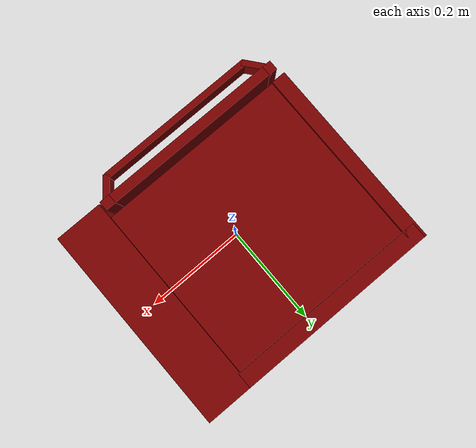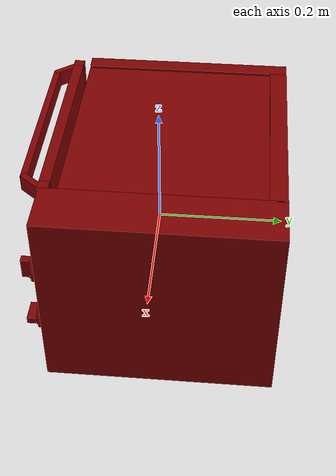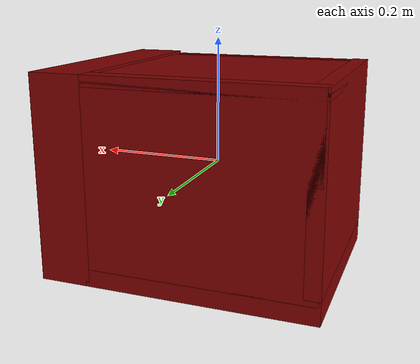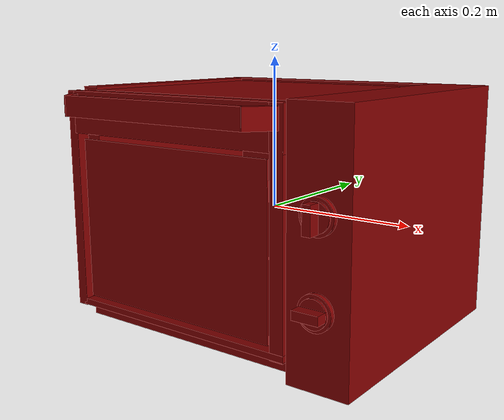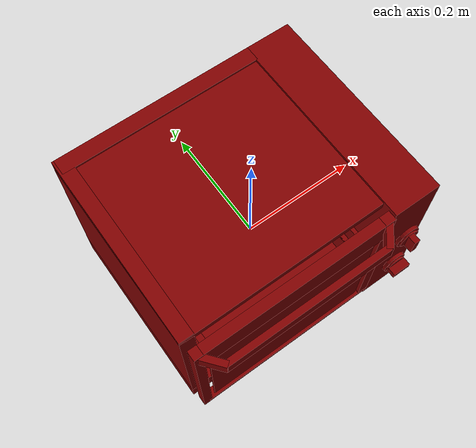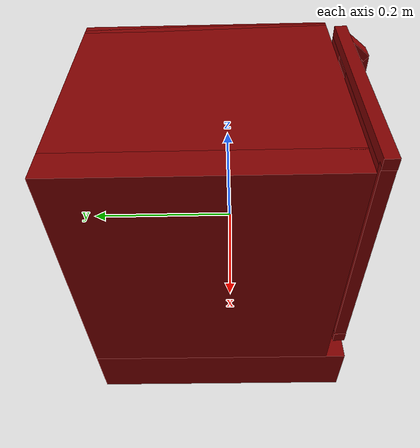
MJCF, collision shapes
<?xml version='1.0' encoding='UTF-8'?>
<mujoco model="model">
  <option timestep="0.002" gravity="0.0 0.0 -9.81"/>
  <compiler angle="radian"/>
  <asset>
    <mesh file="visuals/door.obj" name="door_vis"/>
    <mesh file="visuals/knob_temp.obj" name="knob_temp_vis"/>
    <mesh file="visuals/knob_time.obj" name="knob_time_vis"/>
    <mesh file="visuals/rack0.obj" name="rack0_vis"/>
    <mesh file="visuals/Body001.obj" name="Body001_vis"/>
    <mesh file="visuals/window.obj" name="window_vis"/>
    <texture file="visuals/T_BC001.png" name="Body001_material" type="2d"/>
    <material name="Body001_material" rgba="1 1 1 1.0" texture="Body001_material" shininess="0.1" specular="4"/>
    <texture file="visuals/T_BC001.png" name="door_material" type="2d"/>
    <material name="door_material" rgba="1 1 1 1.0" texture="door_material" shininess="0.1" specular="4"/>
    <material name="window_material" rgba="0.048379525542259216 0.048379525542259216 0.048379525542259216 0.800000011920929" shininess="0.141421377658844" specular="0.3103448502657381"/>
    <texture file="visuals/T_BC001.png" name="knob_temp_material" type="2d"/>
    <material name="knob_temp_material" rgba="1 1 1 1.0" texture="knob_temp_material" shininess="0.1" specular="4"/>
    <texture file="visuals/T_BC001.png" name="knob_time_material" type="2d"/>
    <material name="knob_time_material" rgba="1 1 1 1.0" texture="knob_time_material" shininess="0.1" specular="4"/>
    <texture file="visuals/T_BC001.png" name="rack0_material" type="2d"/>
    <material name="rack0_material" rgba="1 1 1 1.0" texture="rack0_material" shininess="0.1" specular="4"/>
  </asset>
  <default>
    <default class="visual">
      <geom conaffinity="0" contype="0" group="1" type="mesh"/>
    </default>
    <default class="collision">
      <geom group="0" rgba="0.5 0 0 0.5"/>
    </default>
    <default class="spawn">
      <geom group="0" rgba="1 1 1 0.5" contype="0" conaffinity="0"/>
      <site group="0" rgba="1 1 1 0.5"/>
    </default>
    <default class="region">
      <geom group="1" conaffinity="0" contype="0" rgba="0 1 0 0"/>
    </default>
  </default>
  <worldbody>
    <body>
      <body name="object">
        <geom mesh="Body001_vis" type="mesh" solimp="0.998 0.998 0.001" solref="0.001 1" friction="0.95 0.3 0.1" class="visual" material="Body001_material"/>
        <geom class="collision" type="box" pos="-0.20415274798870087 0.030364345759153366 0.018009334802627563" size="0.01228012889623642 0.166828453540802 0.14232683181762695" quat="1.0 0.0 0.0 0.0"/>
        <geom class="collision" type="box" pos="-0.03830508887767792 0.030487140640616417 -0.14075882732868195" size="0.17812778055667877 0.1667056530714035 0.019267026335000992" quat="1.0 0.0 0.0 0.0"/>
        <geom class="collision" type="box" pos="-0.03784903511404991 0.18357542157173157 0.013823936693370342" size="0.17491492629051208 0.013617407530546188 0.1465122401714325" quat="1.0 0.0 0.0 0.0"/>
        <geom class="collision" type="box" pos="0.17535442113876343 0.017078449949622154 0.00015325029380619526" size="0.04107845202088356 0.18011435866355896 0.16018293797969818" quat="1.0 0.0 0.0 0.0"/>
        <geom class="collision" type="box" pos="-0.037926942110061646 0.030364345759153366 0.14960181713104248" size="0.17850592732429504 0.166828453540802 0.006701894570142031" quat="1.0 0.0 0.0 0.0"/>
        <geom class="collision" type="box" pos="-0.18752072751522064 0.01099355798214674 -0.004263693932443857" size="0.0038743503391742706 0.1269080638885498 0.01615913026034832" quat="1.0 0.0 0.0 0.0"/>
        <geom class="collision" type="box" pos="0.129982128739357 0.01099355798214674 -0.00426369346678257" size="0.0038743503391742706 0.1269080638885498 0.01615913212299347" quat="1.0 0.0 0.0 0.0"/>
        <geom class="collision" type="box" pos="0.129982128739357 0.01099355798214674 -0.0417608767747879" size="0.0038743503391742706 0.1269080638885498 0.01615913212299347" quat="1.0 0.0 0.0 0.0"/>
        <geom class="collision" type="box" pos="-0.18752072751522064 0.01099355798214674 -0.041760873049497604" size="0.0038743503391742706 0.1269080638885498 0.01615913026034832" quat="1.0 0.0 0.0 0.0"/>
        <body name="door">
          <joint axis="1.0 0.0 0.0" pos="-0.04003845155239105 -0.1473190039396286 -0.13602320849895477" limited="true" name="door_joint" range="0.0 1.3707963267948966" type="hinge" damping="1" frictionloss="1" armature=".01" stiffness="0.5" springref="-0.5"/>
          <geom mesh="door_vis" type="mesh" solimp="0.998 0.998 0.001" solref="0.001 1" friction="0.95 0.3 0.1" class="visual" material="door_material"/>
          <geom class="collision" type="box" pos="0.12332412600517273 -0.15798062086105347 0.010491401888430119" size="0.009190008975565434 0.00839040707796812 0.14581428468227386" quat="1.0 0.0 0.0 0.0"/>
          <geom class="collision" type="box" pos="-0.04032648354768753 -0.19220219552516937 0.13966584205627441" size="0.14049723744392395 0.005172229837626219 0.013130838051438332" quat="1.0 0.0 0.0 0.0" name="door_handle_main"/>
          <geom class="collision" type="box" pos="-0.19089266657829285 -0.1786157488822937 0.13966584205627441" size="0.020299002528190613 0.005172316916286945 0.013131000101566315" quat="0.9027569890022278 0.0 -0.0 -0.4301508665084839"/>
          <geom class="collision" type="box" pos="-0.20517940819263458 -0.15798062086105347 0.010491397231817245" size="0.007584668230265379 0.00839040707796812 0.14581377804279327" quat="1.0 0.0 0.0 0.0"/>
          <geom class="collision" type="box" pos="-0.03475116938352585 -0.15798062086105347 0.12886808812618256" size="0.16726775467395782 0.00839040707796812 0.027435943484306335" quat="1.0 0.0 0.0 0.0" name="door_main"/>
          <geom class="collision" type="box" pos="-0.03475116938352585 -0.15798062086105347 -0.1301911473274231" size="0.16726741194725037 0.00839040707796812 0.004178016446530819" quat="1.0 0.0 0.0 0.0"/>
          <geom class="collision" type="box" pos="0.11066592484712601 -0.1786157488822937 0.13966584205627441" size="0.020299002528190613 0.005172316916286945 0.013131000101566315" quat="0.9027569890022278 0.0 0.0 0.4301508665084839"/>
          <body name="window">
            <geom mesh="window_vis" type="mesh" solimp="0.998 0.998 0.001" solref="0.001 1" friction="0.95 0.3 0.1" class="visual" material="window_material"/>
            <geom class="collision" type="box" pos="-0.04032052308320999 -0.16133713722229004 -0.013235360383987427" size="0.1489069014787674 0.0013776615960523486 0.10721638798713684" quat="1.0 0.0 0.0 0.0"/>
          </body>
        </body>
        <body name="knob_temp">
          <joint axis="0.0 1.0 0.0" pos="0.17750678956508636 -0.17745542526245117 -0.06337741017341614" limited="true" name="knob_temp_joint" range="0.0 4.014257279586958" type="hinge" damping="0.05" armature="1" frictionloss="0.75"/>
          <geom mesh="knob_temp_vis" type="mesh" solimp="0.998 0.998 0.001" solref="0.001 1" friction="0.95 0.3 0.1" class="visual" material="knob_temp_material"/>
          <geom class="collision" type="cylinder" pos="0.17726966738700867 -0.16968730092048645 -0.06367860734462738" size="0.02181580662727356 0.0030348224099725485" quat="0.7071068286895752 0.7071067690849304 0.0 0.0" friction="100 0.5 0.01"/>
          <geom class="collision" type="cylinder" pos="0.17726966738700867 -0.17273741960525513 -0.06367860734462738" size="0.01766309328377247 0.0030348224099725485" quat="0.7071068286895752 0.7071067690849304 0.0 0.0" friction="100 0.5 0.01"/>
          <geom class="collision" type="box" pos="0.17711836099624634 -0.1826753318309784 -0.06318798661231995" size="0.016971873119473457 0.008014261722564697 0.0056409635581076145" quat="1.0 0.0 0.0 0.0" name="knob_temp_main" friction="100 0.5 0.01"/>
        </body>
        <body name="knob_time">
          <joint axis="0.0 1.0 0.0" pos="0.17845702171325684 -0.17745542526245117 0.041536737233400345" limited="true" name="knob_time_joint" range="0.0 4.049163864626845" type="hinge" damping="0.05" frictionloss="0.75" armature="1"/>
          <geom mesh="knob_time_vis" type="mesh" solimp="0.998 0.998 0.001" solref="0.001 1" friction="0.95 0.3 0.1" class="visual" material="knob_time_material"/>
          <geom class="collision" type="cylinder" pos="0.1791357696056366 -0.16968730092048645 0.041744932532310486" size="0.02181580662727356 0.0030348224099725485" quat="0.7071068286895752 0.7071067690849304 0.0 0.0" friction="100 0.5 0.01"/>
          <geom class="collision" type="cylinder" pos="0.1791357696056366 -0.17273741960525513 0.041744932532310486" size="0.01766309328377247 0.0030348224099725485" quat="0.7071068286895752 0.7071067690849304 0.0 0.0" friction="100 0.5 0.01"/>
          <geom class="collision" type="box" pos="0.1784660965204239 -0.1826753318309784 0.041192345321178436" size="0.005347182508558035 0.008014271035790443 0.016881121322512627" quat="1.0 0.0 0.0 0.0" name="knob_time_main" friction="100 0.5 0.01"/>
        </body>
        <body name="rack0">
          <geom class="region" name="reg_rack0" type="box" pos="-0.02793034538626671 0.009045477956533432 0.05444629583507776" size="0.13092550805211067 0.11804923585057259 0.08276541235297918"/>
          <joint axis="0.0 -1.0 0.0" pos="-0.0286320298910141 0.008345574140548706 -0.02907991036772728" limited="true" name="rack0_joint" range="0.0 0.22" type="slide" damping="1" frictionloss="1" armature=".01" stiffness="0.05"/>
          <geom mesh="rack0_vis" type="mesh" solimp="0.998 0.998 0.001" solref="0.001 1" friction="0.95 0.3 0.1" class="visual" material="rack0_material"/>
          <geom class="collision" type="box" pos="-0.028050526976585388 0.00856306403875351 -0.03445521369576454" size="0.13570380210876465 0.12284986674785614 0.0017037037760019302" quat="1.0 0.0 0.0 0.0"/>
          <geom class="collision" type="box" pos="-0.18249718844890594 0.00848282128572464 -0.023407921195030212" size="0.008577265776693821 0.12300089746713638 0.0016675754450261593" quat="1.0 0.0 0.0 0.0"/>
          <geom class="collision" type="box" pos="-0.16859768331050873 0.008476242423057556 -0.028198152780532837" size="0.008577265776693821 0.12300733476877213 0.0016675754450261593" quat="0.9440328478813171 -2.0632491271044273e-08 0.3298514783382416 7.209132402152818e-09"/>
          <geom class="collision" type="box" pos="0.11243187636137009 0.00847623497247696 -0.028198152780532837" size="0.008577265776693821 0.12300732731819153 0.001667564152739942" quat="7.127249546101666e-08 -0.9440328478813171 -2.4903092921135794e-08 -0.3298514783382416"/>
          <geom class="collision" type="box" pos="0.1255408525466919 0.00848282128572464 -0.023407921195030212" size="0.008577265776693821 0.12300089746713638 0.0016675754450261593" quat="1.0 0.0 0.0 0.0"/>
        </body>
        <geom class="region" name="reg_int" type="box" pos="-0.028664641082286835 0.014313898980617523 0.010159991681575775" size="0.15817176347970963 0.14997451549768448 0.12705171650648117"/>
        <geom class="region" name="reg_main" type="box" pos="0.0 0.015410885214805603 -5.960464477539063e-08" size="0.2174328694343567 0.18278191781044006 0.1613362262248993"/>
      </body>
    </body>
  </worldbody>
  <actuator>
    <motor name="door_joint_actuator" joint="door_joint" gear="50"/>
    <motor name="knob_temp_joint_actuator" joint="knob_temp_joint" gear="50"/>
    <motor name="knob_time_joint_actuator" joint="knob_time_joint" gear="50"/>
    <motor name="rack0_joint_actuator" joint="rack0_joint" gear="50"/>
  </actuator>
</mujoco>
